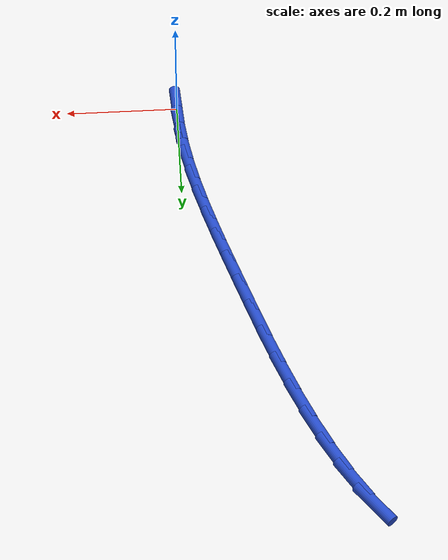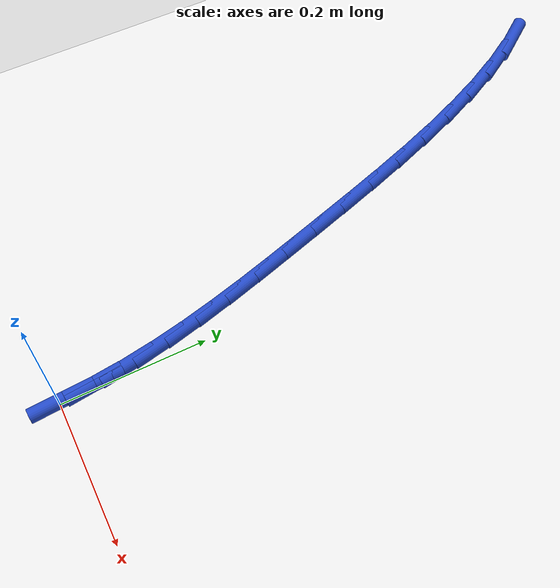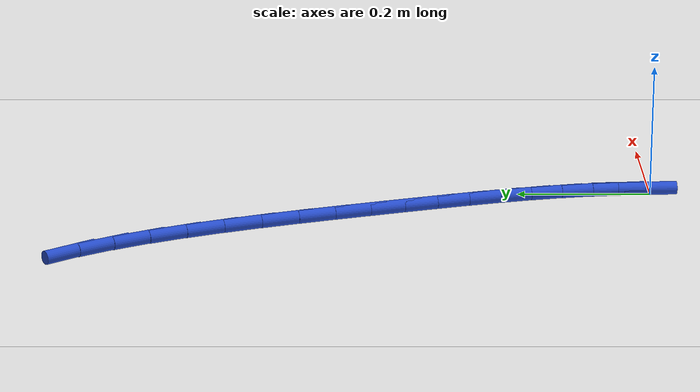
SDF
<sdf version="1.6">
 <world name="default">
  <model name="ground_plane">
   <static>1</static>
   <link name="link">
    <collision name="collision">
     <geometry><plane><normal>0 0 1</normal><size>100 100</size></plane></geometry>
     <surface><friction><ode><mu>100</mu><mu2>50</mu2></ode></friction></surface>
    </collision>
    <visual name="visual">
     <cast_shadows>0</cast_shadows>
     <geometry><plane><normal>0 0 1</normal><size>100 100</size></plane></geometry>
     <material>
      <script><uri>file://media/materials/scripts/gazebo.material</uri><name>Gazebo/WhiteGlow</name></script>
     </material>
    </visual>
   </link>
  </model>
  <model name="line">
   <link name="link_1">
    <pose>-0.0028596655203615533 0.04825528257314192 0.01 0 1.57 -1.456718568302291</pose>
    <collision name="collision">
     <geometry><cylinder><radius>0.01</radius><length>0.08</length></cylinder></geometry>
    </collision>
    <visual name="visual">
     <material>
      <script><name>Gazebo/Blue</name><uri>file://media/materials/scripts/gazebo.material</uri></script>
     </material>
     <geometry><cylinder><radius>0.01</radius><length>0.08</length></cylinder></geometry>
    </visual>
   </link>
   <link name="link_2">
    <pose>-0.008313842283554697 0.09585874661139786 0.01 0 1.57 -1.4078513970397568</pose>
    <collision name="collision">
     <geometry><cylinder><radius>0.01</radius><length>0.08</length></cylinder></geometry>
    </collision>
    <visual name="visual">
     <material>
      <script><name>Gazebo/Blue</name><uri>file://media/materials/scripts/gazebo.material</uri></script>
     </material>
     <geometry><cylinder><radius>0.01</radius><length>0.08</length></cylinder></geometry>
    </visual>
   </link>
   <link name="link_3">
    <pose>-0.016084770692792957 0.14312643967942 0.01 0 1.57 -1.3660786692983289</pose>
    <collision name="collision">
     <geometry><cylinder><radius>0.01</radius><length>0.08</length></cylinder></geometry>
    </collision>
    <visual name="visual">
     <material>
      <script><name>Gazebo/Blue</name><uri>file://media/materials/scripts/gazebo.material</uri></script>
     </material>
     <geometry><cylinder><radius>0.01</radius><length>0.08</length></cylinder></geometry>
    </visual>
   </link>
   <link name="link_4">
    <pose>-0.02589469115128985 0.1903744093418604 0.01 0 1.57 -1.3320614121022025</pose>
    <collision name="collision">
     <geometry><cylinder><radius>0.01</radius><length>0.08</length></cylinder></geometry>
    </collision>
    <visual name="visual">
     <material>
      <script><name>Gazebo/Blue</name><uri>file://media/materials/scripts/gazebo.material</uri></script>
     </material>
     <geometry><cylinder><radius>0.01</radius><length>0.08</length></cylinder></geometry>
    </visual>
   </link>
   <link name="link_5">
    <pose>-0.03746584406225891 0.23791870316337138 0.01 0 1.57 -1.3060720190467154</pose>
    <collision name="collision">
     <geometry><cylinder><radius>0.01</radius><length>0.08</length></cylinder></geometry>
    </collision>
    <visual name="visual">
     <material>
      <script><name>Gazebo/Blue</name><uri>file://media/materials/scripts/gazebo.material</uri></script>
     </material>
     <geometry><cylinder><radius>0.01</radius><length>0.08</length></cylinder></geometry>
    </visual>
   </link>
   <link name="link_6">
    <pose>-0.05052046982891368 0.28607536870860506 0.01 0 1.57 -1.2880566774438684</pose>
    <collision name="collision">
     <geometry><cylinder><radius>0.01</radius><length>0.08</length></cylinder></geometry>
    </collision>
    <visual name="visual">
     <material>
      <script><name>Gazebo/Blue</name><uri>file://media/materials/scripts/gazebo.material</uri></script>
     </material>
     <geometry><cylinder><radius>0.01</radius><length>0.08</length></cylinder></geometry>
    </visual>
   </link>
   <link name="link_7">
    <pose>-0.06478080885446766 0.3351604535422136 0.01 0 1.57 -1.2777102090251995</pose>
    <collision name="collision">
     <geometry><cylinder><radius>0.01</radius><length>0.08</length></cylinder></geometry>
    </collision>
    <visual name="visual">
     <material>
      <script><name>Gazebo/Blue</name><uri>file://media/materials/scripts/gazebo.material</uri></script>
     </material>
     <geometry><cylinder><radius>0.01</radius><length>0.08</length></cylinder></geometry>
    </visual>
   </link>
   <link name="link_8">
    <pose>-0.07996910154213442 0.38549000522884913 0.01 0 1.57 -1.274079964308338</pose>
    <collision name="collision">
     <geometry><cylinder><radius>0.01</radius><length>0.08</length></cylinder></geometry>
    </collision>
    <visual name="visual">
     <material>
      <script><name>Gazebo/Blue</name><uri>file://media/materials/scripts/gazebo.material</uri></script>
     </material>
     <geometry><cylinder><radius>0.01</radius><length>0.08</length></cylinder></geometry>
    </visual>
   </link>
   <link name="link_9">
    <pose>-0.09582421700834413 0.43734782415424683 0.01 0 1.57 -1.2694433381980668</pose>
    <collision name="collision">
     <geometry><cylinder><radius>0.01</radius><length>0.08</length></cylinder></geometry>
    </collision>
    <visual name="visual">
     <material>
      <script><name>Gazebo/Blue</name><uri>file://media/materials/scripts/gazebo.material</uri></script>
     </material>
     <geometry><cylinder><radius>0.01</radius><length>0.08</length></cylinder></geometry>
    </visual>
   </link>
   <link name="link_10">
    <pose>-0.11234759132022659 0.49050852858483596 0.01 0 1.57 -1.258127386948987</pose>
    <collision name="collision">
     <geometry><cylinder><radius>0.01</radius><length>0.08</length></cylinder></geometry>
    </collision>
    <visual name="visual">
     <material>
      <script><name>Gazebo/Blue</name><uri>file://media/materials/scripts/gazebo.material</uri></script>
     </material>
     <geometry><cylinder><radius>0.01</radius><length>0.08</length></cylinder></geometry>
    </visual>
   </link>
   <link name="link_11">
    <pose>-0.12975005790977417 0.54434066361701 0.01 0 1.57 -1.2399732455387567</pose>
    <collision name="collision">
     <geometry><cylinder><radius>0.01</radius><length>0.08</length></cylinder></geometry>
    </collision>
    <visual name="visual">
     <material>
      <script><name>Gazebo/Blue</name><uri>file://media/materials/scripts/gazebo.material</uri></script>
     </material>
     <geometry><cylinder><radius>0.01</radius><length>0.08</length></cylinder></geometry>
    </visual>
   </link>
   <link name="link_12">
    <pose>-0.14824827404152657 0.5982014804985214 0.01 0 1.57 -1.2146116648747454</pose>
    <collision name="collision">
     <geometry><cylinder><radius>0.01</radius><length>0.08</length></cylinder></geometry>
    </collision>
    <visual name="visual">
     <material>
      <script><name>Gazebo/Blue</name><uri>file://media/materials/scripts/gazebo.material</uri></script>
     </material>
     <geometry><cylinder><radius>0.01</radius><length>0.08</length></cylinder></geometry>
    </visual>
   </link>
   <link name="link_13">
    <pose>-0.16805889698002344 0.6514482304771235 0.01 0 1.57 -1.1813070271315929</pose>
    <collision name="collision">
     <geometry><cylinder><radius>0.01</radius><length>0.08</length></cylinder></geometry>
    </collision>
    <visual name="visual">
     <material>
      <script><name>Gazebo/Blue</name><uri>file://media/materials/scripts/gazebo.material</uri></script>
     </material>
     <geometry><cylinder><radius>0.01</radius><length>0.08</length></cylinder></geometry>
    </visual>
   </link>
   <link name="link_14">
    <pose>-0.18939858398980458 0.7034381648005698 0.01 0 1.57 -1.1389354904783646</pose>
    <collision name="collision">
     <geometry><cylinder><radius>0.01</radius><length>0.08</length></cylinder></geometry>
    </collision>
    <visual name="visual">
     <material>
      <script><name>Gazebo/Blue</name><uri>file://media/materials/scripts/gazebo.material</uri></script>
     </material>
     <geometry><cylinder><radius>0.01</radius><length>0.08</length></cylinder></geometry>
    </visual>
   </link>
   <link name="link_15">
    <pose>-0.2124839923354097 0.7535285347166131 0.01 0 1.57 -1.0859480123321694</pose>
    <collision name="collision">
     <geometry><cylinder><radius>0.01</radius><length>0.08</length></cylinder></geometry>
    </collision>
    <visual name="visual">
     <material>
      <script><name>Gazebo/Blue</name><uri>file://media/materials/scripts/gazebo.material</uri></script>
     </material>
     <geometry><cylinder><radius>0.01</radius><length>0.08</length></cylinder></geometry>
    </visual>
   </link>
   <link name="link_16">
    <pose>-0.2375317792813785 0.8010765914730066 0.01 0 1.57 -1.0203436368515724</pose>
    <collision name="collision">
     <geometry><cylinder><radius>0.01</radius><length>0.08</length></cylinder></geometry>
    </collision>
    <visual name="visual">
     <material>
      <script><name>Gazebo/Blue</name><uri>file://media/materials/scripts/gazebo.material</uri></script>
     </material>
     <geometry><cylinder><radius>0.01</radius><length>0.08</length></cylinder></geometry>
    </visual>
   </link>
   <link name="link_17">
    <pose>-0.26475860209225066 0.8454395863175032 0.01 0 1.57 -0.9397064769150355</pose>
    <collision name="collision">
     <geometry><cylinder><radius>0.01</radius><length>0.08</length></cylinder></geometry>
    </collision>
    <visual name="visual">
     <material>
      <script><name>Gazebo/Blue</name><uri>file://media/materials/scripts/gazebo.material</uri></script>
     </material>
     <geometry><cylinder><radius>0.01</radius><length>0.08</length></cylinder></geometry>
    </visual>
   </link>
   <link name="link_150">
    <pose>1.0408340855860843e-17 1.3877787807814457e-16 0.01 0 1.57 -1.5104064339866035</pose>
    <collision name="collision">
     <geometry><cylinder><radius>0.01</radius><length>0.08</length></cylinder></geometry>
    </collision>
    <visual name="visual">
     <material>
      <script><name>Gazebo/Blue</name><uri>file://media/materials/scripts/gazebo.material</uri></script>
     </material>
     <geometry><cylinder><radius>0.01</radius><length>0.08</length></cylinder></geometry>
    </visual>
   </link>
   <link name="link_151">
    <pose>-0.0029107234826415106 0.04814024460686483 0.01 0 1.57 -1.5104064339866037</pose>
    <collision name="collision">
     <geometry><cylinder><radius>0.01</radius><length>0.08</length></cylinder></geometry>
    </collision>
    <visual name="visual">
     <material>
      <script><name>Gazebo/Blue</name><uri>file://media/materials/scripts/gazebo.material</uri></script>
     </material>
     <geometry><cylinder><radius>0.01</radius><length>0.08</length></cylinder></geometry>
    </visual>
   </link>
  </model>
 </world>
</sdf>
